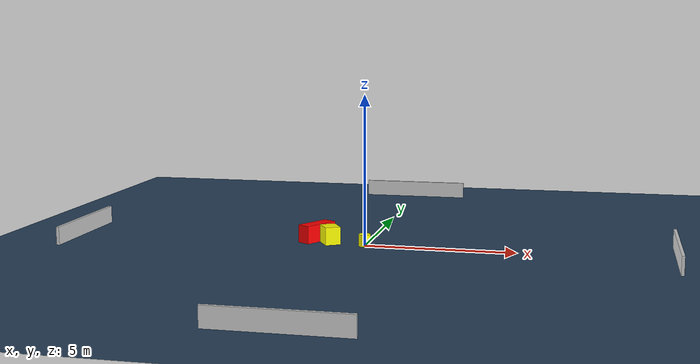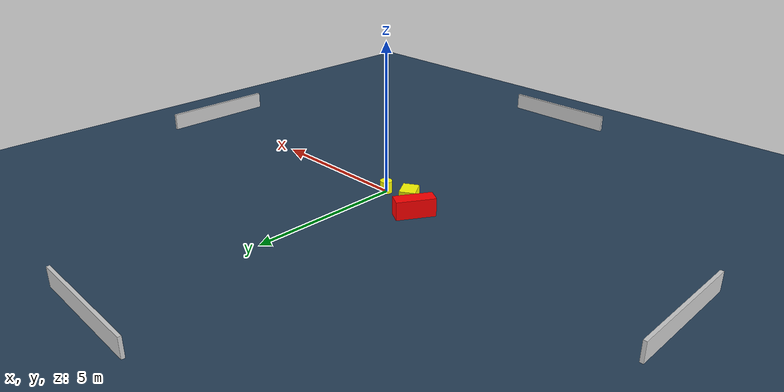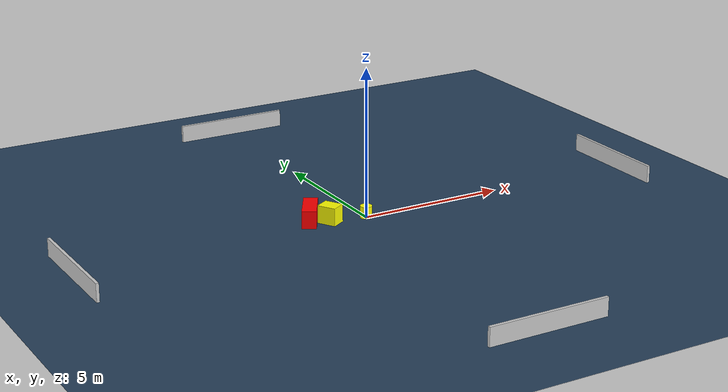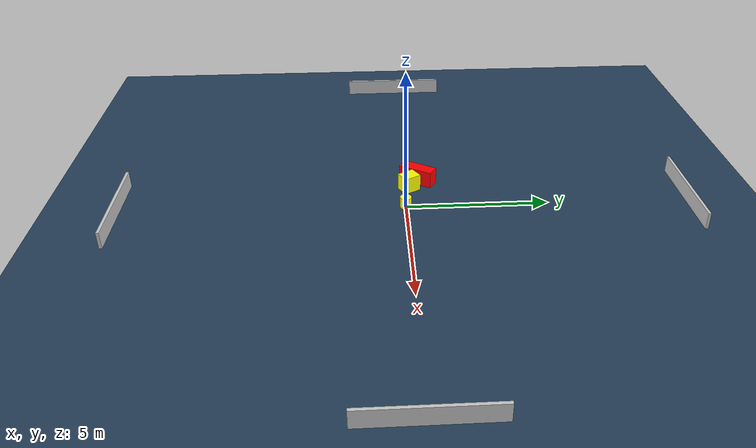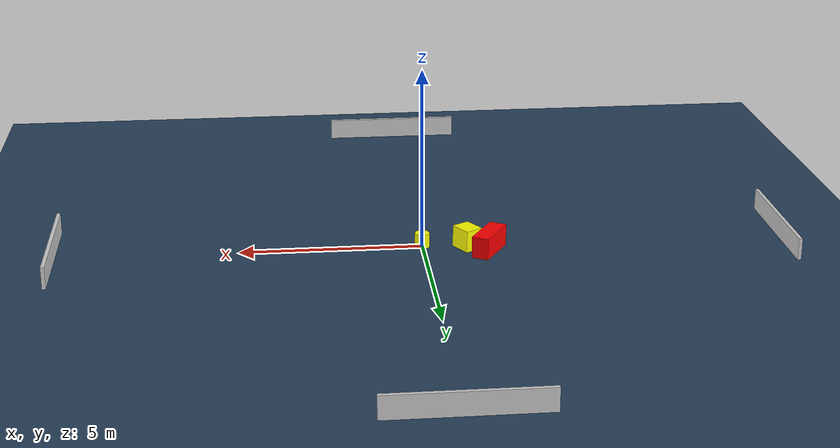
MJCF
<?xml version="1.0" ?>
<mujoco model="generated_environment">
  <option timestep="0.01" integrator="RK4" cone="elliptic"/>
  <default>
    <geom density="1"/>
  </default>
  <asset>
    <texture builtin="gradient" height="3072" name="skybox" rgb1="0.3 0.5 0.7" rgb2="0 0 0" type="skybox" width="512"/>
    <texture builtin="checker" height="300" name="groundplane" rgb1="0.2 0.3 0.4" rgb2="0.1 0.2 0.3" type="2d" width="300"/>
    <material name="groundplane" reflectance="0.2" texrepeat="5 5" texture="groundplane"/>
  </asset>
  <worldbody>
    <light dir="0 0 -1" directional="true" pos="0 0 1.5"/>
    <geom condim="3" friction="0.5 0.005 0.001" material="groundplane" name="floor" pos="0 0 0" size="0 0 0.05" type="plane"/>
    <body name="walls">
      <geom name="wall_1" condim="4" pos="-10.0 0.0 0.3" rgba="0.800000011920929 0.800000011920929 0.800000011920929 1.0" size="0.05 2.0 0.3" type="box"/>
      <geom name="wall_2" condim="4" pos="10.0 0.0 0.3" rgba="0.800000011920929 0.800000011920929 0.800000011920929 1.0" size="0.05 2.0 0.3" type="box"/>
      <geom name="wall_3" condim="4" pos="0.0 -10.0 0.3" rgba="0.800000011920929 0.800000011920929 0.800000011920929 1.0" size="2.0 0.05 0.3" type="box"/>
      <geom name="wall_4" condim="4" pos="0.0 10.0 0.3" rgba="0.800000011920929 0.800000011920929 0.800000011920929 1.0" size="2.0 0.05 0.3" type="box"/>
    </body>
    <body name="robot">
      <joint name="joint_x" type="slide" pos="0 0 0" axis="1 0 0"/>
      <joint name="joint_y" type="slide" pos="0 0 0" axis="0 1 0"/>
      <geom name="robot" type="cylinder" pos="0.0 0.0 0.2" size="0.2 0.2 0.0" mass="5.0" friction="1.0 0.005 0.0001" condim="4" rgba="1.0 1.0 0.0 1.0"/>
    </body>
    <body name="obstacle_1_movable">
      <geom name="obstacle_1_movable" condim="4" pos="-1.2226798409271231 0.18824590673944921 0.3" euler="0 0 30.805952566893616" friction="0.0 0.005 0.001" rgba="1.0 1.0 0.0 1.0" size="0.25739785325168263 0.31728758092032006 0.3" type="box" mass="0.1"/>
      <joint type="free"/>
    </body>
    <body name="obstacle_2_static">
      <geom name="obstacle_2_static" condim="4" pos="-1.7761860865972614 0.5344980614575475 0.3" euler="0 0 329.2374419498793" friction="0.0 0.005 0.001" rgba="1.0 0.0 0.0 1.0" size="0.23665324715004776 0.6339925897614216 0.3" type="box"/>
    </body>
  </worldbody>
  <actuator>
    <motor name="actuator_x" joint="joint_x" gear="1" ctrlrange="-1 1"/>
    <motor name="actuator_y" joint="joint_y" gear="1" ctrlrange="-1 1"/>
  </actuator>
</mujoco>
